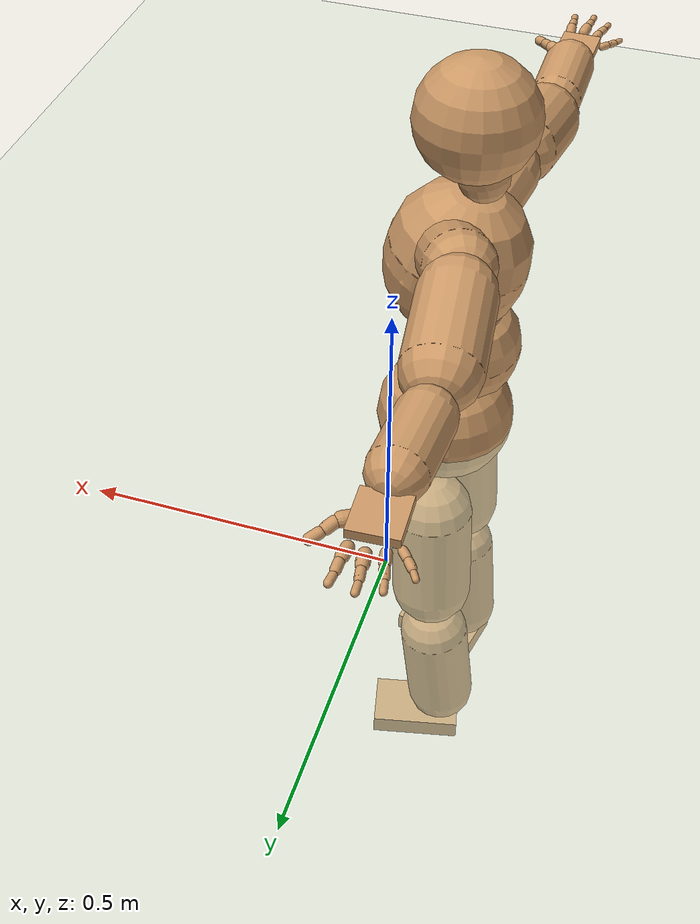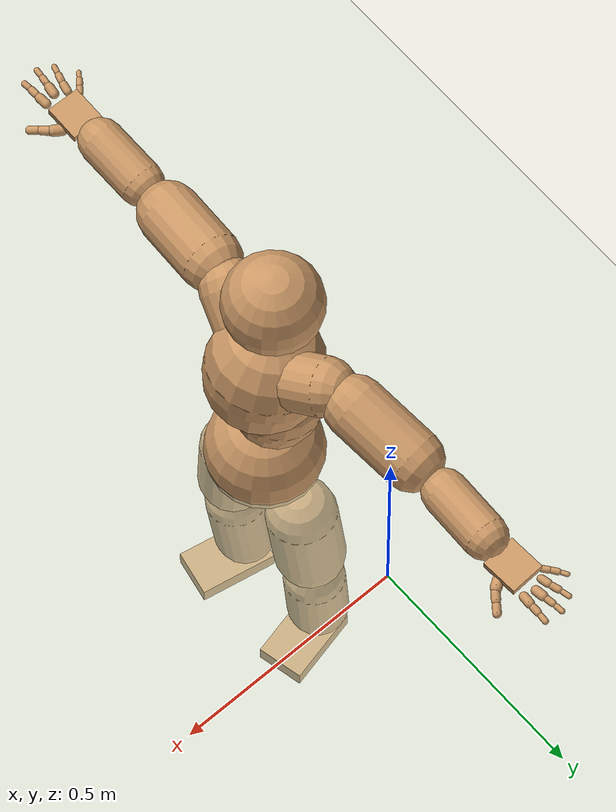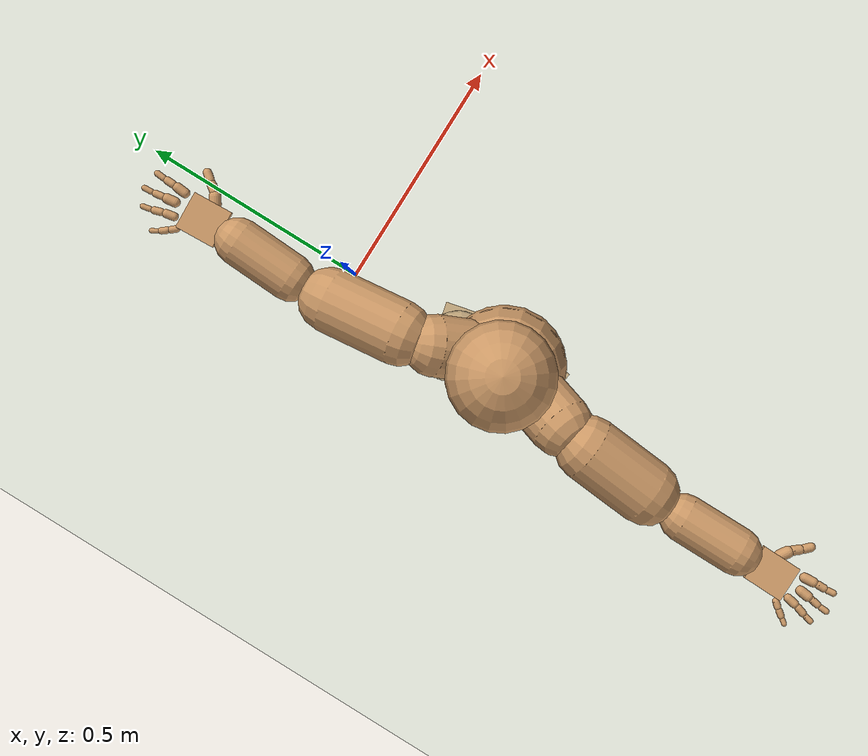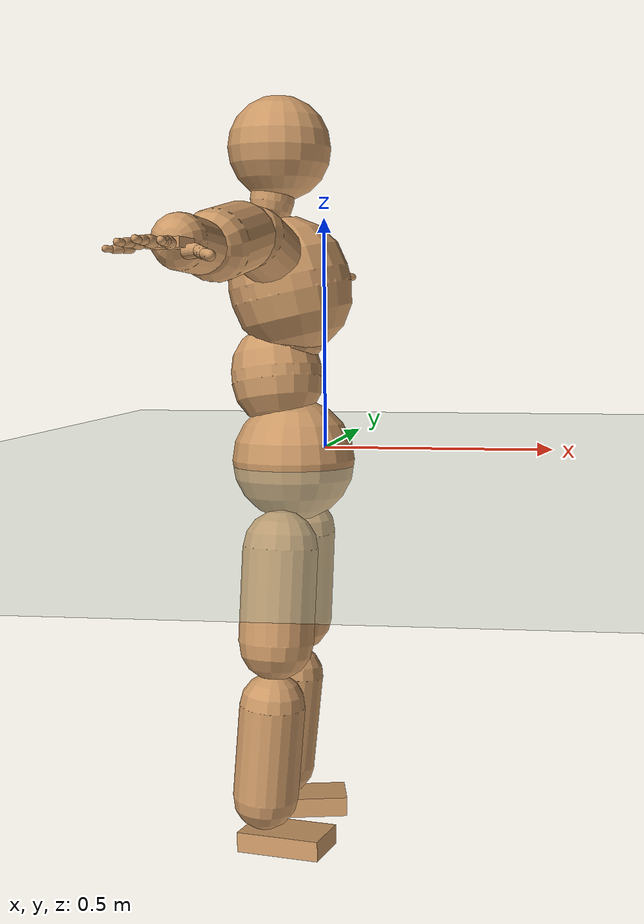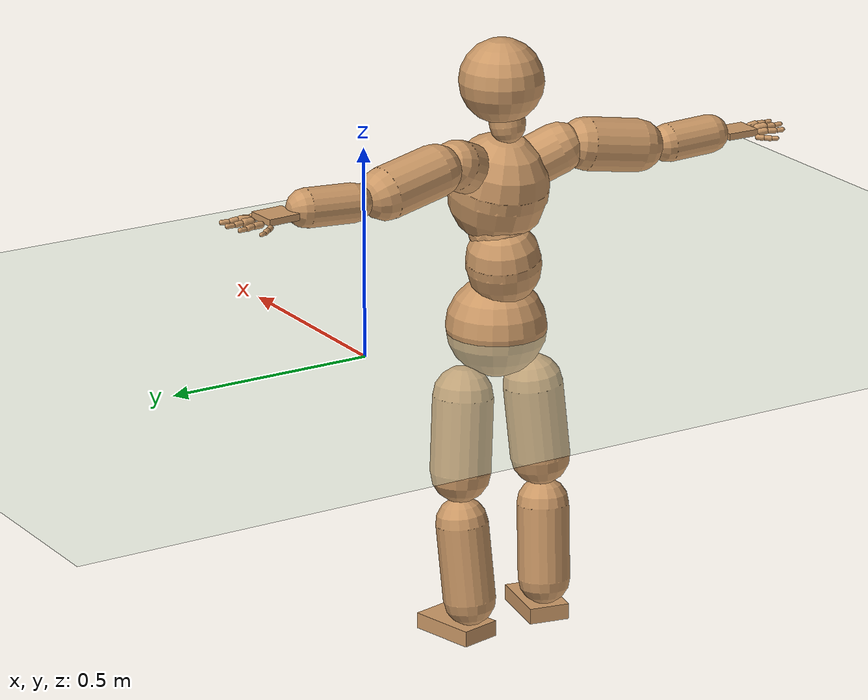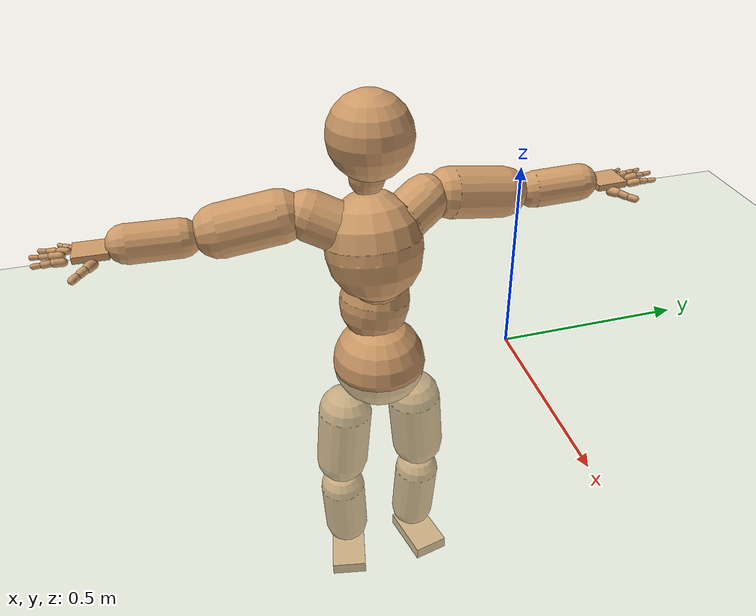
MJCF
<mujoco model="humanoid">
  <compiler coordinate="local" angle="radian"/>
  <default>
    <joint damping="0.0" armature="0.01" stiffness="0.0" limited="true"/>
    <geom conaffinity="1" condim="3" contype="7" margin="0.001" rgba="0.8 0.6 .4 1"/>
  </default>
  <asset>
    <texture type="skybox" builtin="gradient" rgb1=".4 .5 .6" rgb2="0 0 0" width="100" height="100"/>
    <texture builtin="flat" height="1278" mark="cross" markrgb="1 1 1" name="texgeom" random="0.01" rgb1="0.8 0.6 0.4" rgb2="0.8 0.6 0.4" type="cube" width="127"/>
    <texture builtin="checker" height="100" name="texplane" rgb1="0 0 0" rgb2="0.8 0.8 0.8" type="2d" width="100"/>
    <material name="MatPlane" reflectance="0.5" shininess="1" specular="1" texrepeat="60 60" texture="texplane"/>
    <material name="geom" texture="texgeom" texuniform="true"/>
  </asset>
  <worldbody>
    <light cutoff="100" diffuse="1 1 1" dir="-0 0 -1.3" directional="true" exponent="1" pos="0 0 1.3" specular=".1 .1 .1"/>
    <geom conaffinity="1" condim="3" name="floor" pos="0 0 0" rgba="0.8 0.9 0.8 1" size="100 100 .2" type="plane" material="MatPlane"/>
    <body name="Pelvis" pos="0.0011 -0.3568 0.0102">
      <freejoint name="Pelvis"/>
      <geom type="sphere" contype="1" conaffinity="1" density="500" size="0.1203" pos="0.0000 0.0000 0.0000" name="Pelvis"/>
      <body name="L_Hip" pos="-0.0052 0.0921 -0.093">
        <joint name="L_Hip_x" type="hinge" pos="0 0 0" axis="1 0 0" stiffness="800" damping="80" armature="0.02" range="-180.0000 180.0000"/>
        <joint name="L_Hip_y" type="hinge" pos="0 0 0" axis="0 1 0" stiffness="800" damping="80" armature="0.02" range="-180.0000 180.0000"/>
        <joint name="L_Hip_z" type="hinge" pos="0 0 0" axis="0 0 1" stiffness="800" damping="80" armature="0.02" range="-180.0000 180.0000"/>
        <geom type="capsule" contype="1" conaffinity="1" density="500" fromto="-0.0035 0.0047 -0.0614 -0.0140 0.0188 -0.2454" size="0.0722" name="L_Hip"/>
        <body name="L_Knee" pos="-0.0175 0.0235 -0.3068">
          <joint name="L_Knee_x" type="hinge" pos="0 0 0" axis="1 0 0" stiffness="800" damping="80" armature="0.02" range="-180.0000 180.0000"/>
          <joint name="L_Knee_y" type="hinge" pos="0 0 0" axis="0 1 0" stiffness="800" damping="80" armature="0.02" range="-180.0000 180.0000"/>
          <joint name="L_Knee_z" type="hinge" pos="0 0 0" axis="0 0 1" stiffness="800" damping="80" armature="0.02" range="-180.0000 180.0000"/>
          <geom type="capsule" contype="1" conaffinity="1" density="500" fromto="-0.0061 -0.0031 -0.0632 -0.0244 -0.0123 -0.2529" size="0.063" name="L_Knee"/>
          <body name="L_Ankle" pos="-0.0305 -0.0154 -0.3161">
            <joint name="L_Ankle_x" type="hinge" pos="0 0 0" axis="1 0 0" stiffness="800" damping="80" armature="0.02" range="-180.0000 180.0000"/>
            <joint name="L_Ankle_y" type="hinge" pos="0 0 0" axis="0 1 0" stiffness="800" damping="80" armature="0.02" range="-180.0000 180.0000"/>
            <joint name="L_Ankle_z" type="hinge" pos="0 0 0" axis="0 0 1" stiffness="800" damping="80" armature="0.02" range="-180.0000 180.0000"/>
            <geom type="box" contype="1" conaffinity="1" density="500" pos="0.0510 0.0115 -0.0167" size="0.0826 0.0496 0.0193" quat="0.9938 0.0000 0.0000 0.1108" name="L_Ankle"/>
            <body name="L_Toe" pos="0.102 0.023 -0.0334">
              <joint name="L_Toe_x" type="hinge" pos="0 0 0" axis="1 0 0" stiffness="500" damping="50" armature="0.02" range="-180.0000 180.0000"/>
              <joint name="L_Toe_y" type="hinge" pos="0 0 0" axis="0 1 0" stiffness="500" damping="50" armature="0.02" range="-180.0000 180.0000"/>
              <joint name="L_Toe_z" type="hinge" pos="0 0 0" axis="0 0 1" stiffness="500" damping="50" armature="0.02" range="-180.0000 180.0000"/>
              <geom type="box" contype="1" conaffinity="1" density="500" pos="0.0000 0.0000 0.0187" size="0.0009 0.0024 0.0011" quat="0.9930 0.0000 0.0000 0.1178" name="L_Toe"/>
            </body>
          </body>
        </body>
      </body>
      <body name="R_Hip" pos="-0.0059 -0.0918 -0.0989">
        <joint name="R_Hip_x" type="hinge" pos="0 0 0" axis="1 0 0" stiffness="800" damping="80" armature="0.02" range="-180.0000 180.0000"/>
        <joint name="R_Hip_y" type="hinge" pos="0 0 0" axis="0 1 0" stiffness="800" damping="80" armature="0.02" range="-180.0000 180.0000"/>
        <joint name="R_Hip_z" type="hinge" pos="0 0 0" axis="0 0 1" stiffness="800" damping="80" armature="0.02" range="-180.0000 180.0000"/>
        <geom type="capsule" contype="1" conaffinity="1" density="500" fromto="-0.0022 -0.0057 -0.0606 -0.0086 -0.0230 -0.2423" size="0.072" name="R_Hip"/>
        <body name="R_Knee" pos="-0.0108 -0.0287 -0.3028">
          <joint name="R_Knee_x" type="hinge" pos="0 0 0" axis="1 0 0" stiffness="800" damping="80" armature="0.02" range="-180.0000 180.0000"/>
          <joint name="R_Knee_y" type="hinge" pos="0 0 0" axis="0 1 0" stiffness="800" damping="80" armature="0.02" range="-180.0000 180.0000"/>
          <joint name="R_Knee_z" type="hinge" pos="0 0 0" axis="0 0 1" stiffness="800" damping="80" armature="0.02" range="-180.0000 180.0000"/>
          <geom type="capsule" contype="1" conaffinity="1" density="500" fromto="-0.0055 0.0021 -0.0615 -0.0221 0.0085 -0.2460" size="0.0631" name="R_Knee"/>
          <body name="R_Ankle" pos="-0.0276 0.0106 -0.3076">
            <joint name="R_Ankle_x" type="hinge" pos="0 0 0" axis="1 0 0" stiffness="800" damping="80" armature="0.02" range="-180.0000 180.0000"/>
            <joint name="R_Ankle_y" type="hinge" pos="0 0 0" axis="0 1 0" stiffness="800" damping="80" armature="0.02" range="-180.0000 180.0000"/>
            <joint name="R_Ankle_z" type="hinge" pos="0 0 0" axis="0 0 1" stiffness="800" damping="80" armature="0.02" range="-180.0000 180.0000"/>
            <geom type="box" contype="1" conaffinity="1" density="500" pos="0.0480 -0.0095 -0.0182" size="0.0826 0.0496 0.0193" quat="0.9952 0.0000 0.0000 -0.0975" name="R_Ankle"/>
            <body name="R_Toe" pos="0.0961 -0.019 -0.0364">
              <joint name="R_Toe_x" type="hinge" pos="0 0 0" axis="1 0 0" stiffness="500" damping="50" armature="0.02" range="-180.0000 180.0000"/>
              <joint name="R_Toe_y" type="hinge" pos="0 0 0" axis="0 1 0" stiffness="500" damping="50" armature="0.02" range="-180.0000 180.0000"/>
              <joint name="R_Toe_z" type="hinge" pos="0 0 0" axis="0 0 1" stiffness="500" damping="50" armature="0.02" range="-180.0000 180.0000"/>
              <geom type="box" contype="1" conaffinity="1" density="500" pos="0.0000 0.0000 0.0201" size="0.0009 0.0024 0.0011" quat="0.9963 0.0000 0.0000 -0.0857" name="R_Toe"/>
            </body>
          </body>
        </body>
      </body>
      <body name="Torso" pos="-0.0263 -0.0069 0.1092">
        <joint name="Torso_x" type="hinge" pos="0 0 0" axis="1 0 0" stiffness="1000" damping="100" armature="0.02" range="-180.0000 180.0000"/>
        <joint name="Torso_y" type="hinge" pos="0 0 0" axis="0 1 0" stiffness="1000" damping="100" armature="0.02" range="-180.0000 180.0000"/>
        <joint name="Torso_z" type="hinge" pos="0 0 0" axis="0 0 1" stiffness="1000" damping="100" armature="0.02" range="-180.0000 180.0000"/>
        <geom type="capsule" contype="1" conaffinity="1" density="500" fromto="-0.0079 0.0096 0.0667 -0.0053 0.0064 0.0444" size="0.0887" name="Torso"/>
        <body name="Spine" pos="-0.0132 0.016 0.1111">
          <joint name="Spine_x" type="hinge" pos="0 0 0" axis="1 0 0" stiffness="1000" damping="100" armature="0.02" range="-180.0000 180.0000"/>
          <joint name="Spine_y" type="hinge" pos="0 0 0" axis="0 1 0" stiffness="1000" damping="100" armature="0.02" range="-180.0000 180.0000"/>
          <joint name="Spine_z" type="hinge" pos="0 0 0" axis="0 0 1" stiffness="1000" damping="100" armature="0.02" range="-180.0000 180.0000"/>
          <geom type="capsule" contype="1" conaffinity="1" density="500" fromto="0.0314 -0.0058 0.0263 0.0209 -0.0038 0.0175" size="0.0708" name="Spine"/>
          <body name="Chest" pos="0.0523 -0.0096 0.0439">
            <joint name="Chest_x" type="hinge" pos="0 0 0" axis="1 0 0" stiffness="1000" damping="100" armature="0.02" range="-180.0000 180.0000"/>
            <joint name="Chest_y" type="hinge" pos="0 0 0" axis="0 1 0" stiffness="1000" damping="100" armature="0.02" range="-180.0000 180.0000"/>
            <joint name="Chest_z" type="hinge" pos="0 0 0" axis="0 0 1" stiffness="1000" damping="100" armature="0.02" range="-180.0000 180.0000"/>
            <geom type="capsule" contype="1" conaffinity="1" density="500" fromto="-0.0204 -0.0022 0.0896 -0.0136 -0.0014 0.0597" size="0.1181" name="Chest"/>
            <body name="Neck" pos="-0.0547 -0.0072 0.2061">
              <joint name="Neck_x" type="hinge" pos="0 0 0" axis="1 0 0" stiffness="500" damping="50" armature="0.02" range="-180.0000 180.0000"/>
              <joint name="Neck_y" type="hinge" pos="0 0 0" axis="0 1 0" stiffness="500" damping="50" armature="0.02" range="-180.0000 180.0000"/>
              <joint name="Neck_z" type="hinge" pos="0 0 0" axis="0 0 1" stiffness="500" damping="50" armature="0.02" range="-180.0000 180.0000"/>
              <geom type="capsule" contype="1" conaffinity="1" density="500" fromto="0.0037 0.0019 0.0260 0.0148 0.0077 0.1040" size="0.0424" name="Neck"/>
              <body name="Head" pos="0.0184 0.0096 0.1299">
                <joint name="Head_x" type="hinge" pos="0 0 0" axis="1 0 0" stiffness="500" damping="50" armature="0.02" range="-180.0000 180.0000"/>
                <joint name="Head_y" type="hinge" pos="0 0 0" axis="0 1 0" stiffness="500" damping="50" armature="0.02" range="-180.0000 180.0000"/>
                <joint name="Head_z" type="hinge" pos="0 0 0" axis="0 0 1" stiffness="500" damping="50" armature="0.02" range="-180.0000 180.0000"/>
                <geom type="sphere" contype="1" conaffinity="1" density="500" size="0.0998" pos="0.0000 0.0000 0.0000" name="Head"/>
              </body>
            </body>
            <body name="L_Thorax" pos="-0.0196 0.0587 0.1231">
              <joint name="L_Thorax_x" type="hinge" pos="0 0 0" axis="1 0 0" stiffness="500" damping="50" armature="0.02" range="-180.0000 180.0000"/>
              <joint name="L_Thorax_y" type="hinge" pos="0 0 0" axis="0 1 0" stiffness="500" damping="50" armature="0.02" range="-180.0000 180.0000"/>
              <joint name="L_Thorax_z" type="hinge" pos="0 0 0" axis="0 0 1" stiffness="500" damping="50" armature="0.02" range="-180.0000 180.0000"/>
              <geom type="capsule" contype="1" conaffinity="1" density="500" fromto="-0.0083 0.0187 0.0089 -0.0334 0.0746 0.0357" size="0.0592" name="L_Thorax"/>
              <body name="L_Shoulder" pos="-0.0417 0.0933 0.0446">
                <joint name="L_Shoulder_x" type="hinge" pos="0 0 0" axis="1 0 0" stiffness="500" damping="50" armature="0.02" range="-180.0000 180.0000"/>
                <joint name="L_Shoulder_y" type="hinge" pos="0 0 0" axis="0 1 0" stiffness="500" damping="50" armature="0.02" range="-180.0000 180.0000"/>
                <joint name="L_Shoulder_z" type="hinge" pos="0 0 0" axis="0 0 1" stiffness="500" damping="50" armature="0.02" range="-180.0000 180.0000"/>
                <geom type="capsule" contype="1" conaffinity="1" density="500" fromto="-0.0053 0.0475 -0.0084 -0.0214 0.1899 -0.0338" size="0.0625" name="L_Shoulder"/>
                <body name="L_Elbow" pos="-0.0267 0.2374 -0.0422">
                  <joint name="L_Elbow_x" type="hinge" pos="0 0 0" axis="1 0 0" stiffness="500" damping="50" armature="0.02" range="-720.0000 720.0000"/>
                  <joint name="L_Elbow_y" type="hinge" pos="0 0 0" axis="0 1 0" stiffness="500" damping="50" armature="0.02" range="-720.0000 720.0000"/>
                  <joint name="L_Elbow_z" type="hinge" pos="0 0 0" axis="0 0 1" stiffness="500" damping="50" armature="0.02" range="-720.0000 720.0000"/>
                  <geom type="capsule" contype="1" conaffinity="1" density="500" fromto="0.0019 0.0394 0.0019 0.0076 0.1577 0.0078" size="0.0457" name="L_Elbow"/>
                  <body name="L_Wrist" pos="0.0095 0.1971 0.0097">
                    <joint name="L_Wrist_x" type="hinge" pos="0 0 0" axis="1 0 0" stiffness="300" damping="30" armature="0.02" range="-180.0000 180.0000"/>
                    <joint name="L_Wrist_y" type="hinge" pos="0 0 0" axis="0 1 0" stiffness="300" damping="30" armature="0.02" range="-180.0000 180.0000"/>
                    <joint name="L_Wrist_z" type="hinge" pos="0 0 0" axis="0 0 1" stiffness="300" damping="30" armature="0.02" range="-180.0000 180.0000"/>
                    <geom type="box" contype="1" conaffinity="1" density="500" pos="-0.0019 0.0374 -0.0076" size="0.0396 0.0371 0.0078" quat="0.7244 0.0000 0.0000 -0.6894" name="L_Wrist"/>
                    <body name="L_Index1" pos="0.0216 0.0893 -0.0127">
                      <joint name="L_Index1_x" type="hinge" pos="0 0 0" axis="1 0 0" stiffness="100" damping="10" armature="0.02" range="-180.0000 180.0000"/>
                      <joint name="L_Index1_y" type="hinge" pos="0 0 0" axis="0 1 0" stiffness="100" damping="10" armature="0.02" range="-180.0000 180.0000"/>
                      <joint name="L_Index1_z" type="hinge" pos="0 0 0" axis="0 0 1" stiffness="100" damping="10" armature="0.02" range="-180.0000 180.0000"/>
                      <geom type="capsule" contype="1" conaffinity="1" density="500" fromto="0.0006 0.0060 0.0006 0.0022 0.0239 0.0024" size="0.0094" name="L_Index1"/>
                      <body name="L_Index2" pos="0.0028 0.0299 0.003">
                        <joint name="L_Index2_x" type="hinge" pos="0 0 0" axis="1 0 0" stiffness="100" damping="10" armature="0.02" range="-180.0000 180.0000"/>
                        <joint name="L_Index2_y" type="hinge" pos="0 0 0" axis="0 1 0" stiffness="100" damping="10" armature="0.02" range="-180.0000 180.0000"/>
                        <joint name="L_Index2_z" type="hinge" pos="0 0 0" axis="0 0 1" stiffness="100" damping="10" armature="0.02" range="-180.0000 180.0000"/>
                        <geom type="capsule" contype="1" conaffinity="1" density="500" fromto="0.0000 0.0042 -0.0002 0.0001 0.0169 -0.0010" size="0.0076" name="L_Index2"/>
                        <body name="L_Index3" pos="0.0001 0.0211 -0.0012">
                          <joint name="L_Index3_x" type="hinge" pos="0 0 0" axis="1 0 0" stiffness="100" damping="10" armature="0.02" range="-180.0000 180.0000"/>
                          <joint name="L_Index3_y" type="hinge" pos="0 0 0" axis="0 1 0" stiffness="100" damping="10" armature="0.02" range="-180.0000 180.0000"/>
                          <joint name="L_Index3_z" type="hinge" pos="0 0 0" axis="0 0 1" stiffness="100" damping="10" armature="0.02" range="-180.0000 180.0000"/>
                          <geom type="capsule" contype="1" conaffinity="1" density="500" fromto="0.0004 0.0046 0.0002 0.0017 0.0185 0.0006" size="0.0061" name="L_Index3"/>
                        </body>
                      </body>
                    </body>
                    <body name="L_Middle1" pos="-0.0015 0.0957 -0.0102">
                      <joint name="L_Middle1_x" type="hinge" pos="0 0 0" axis="1 0 0" stiffness="100" damping="10" armature="0.02" range="-180.0000 180.0000"/>
                      <joint name="L_Middle1_y" type="hinge" pos="0 0 0" axis="0 1 0" stiffness="100" damping="10" armature="0.02" range="-180.0000 180.0000"/>
                      <joint name="L_Middle1_z" type="hinge" pos="0 0 0" axis="0 0 1" stiffness="100" damping="10" armature="0.02" range="-180.0000 180.0000"/>
                      <geom type="capsule" contype="1" conaffinity="1" density="500" fromto="-0.0007 0.0057 0.0003 -0.0028 0.0227 0.0013" size="0.0097" name="L_Middle1"/>
                      <body name="L_Middle2" pos="-0.0035 0.0283 0.0017">
                        <joint name="L_Middle2_x" type="hinge" pos="0 0 0" axis="1 0 0" stiffness="100" damping="10" armature="0.02" range="-180.0000 180.0000"/>
                        <joint name="L_Middle2_y" type="hinge" pos="0 0 0" axis="0 1 0" stiffness="100" damping="10" armature="0.02" range="-180.0000 180.0000"/>
                        <joint name="L_Middle2_z" type="hinge" pos="0 0 0" axis="0 0 1" stiffness="100" damping="10" armature="0.02" range="-180.0000 180.0000"/>
                        <geom type="capsule" contype="1" conaffinity="1" density="500" fromto="-0.0007 0.0043 -0.0001 -0.0028 0.0174 -0.0006" size="0.007" name="L_Middle2"/>
                        <body name="L_Middle3" pos="-0.0036 0.0217 -0.0007">
                          <joint name="L_Middle3_x" type="hinge" pos="0 0 0" axis="1 0 0" stiffness="100" damping="10" armature="0.02" range="-180.0000 180.0000"/>
                          <joint name="L_Middle3_y" type="hinge" pos="0 0 0" axis="0 1 0" stiffness="100" damping="10" armature="0.02" range="-180.0000 180.0000"/>
                          <joint name="L_Middle3_z" type="hinge" pos="0 0 0" axis="0 0 1" stiffness="100" damping="10" armature="0.02" range="-180.0000 180.0000"/>
                          <geom type="capsule" contype="1" conaffinity="1" density="500" fromto="-0.0003 0.0047 0.0003 -0.0012 0.0190 0.0010" size="0.0056" name="L_Middle3"/>
                        </body>
                      </body>
                    </body>
                    <body name="L_Pinky1" pos="-0.0411 0.0715 -0.0183">
                      <joint name="L_Pinky1_x" type="hinge" pos="0 0 0" axis="1 0 0" stiffness="100" damping="10" armature="0.02" range="-180.0000 180.0000"/>
                      <joint name="L_Pinky1_y" type="hinge" pos="0 0 0" axis="0 1 0" stiffness="100" damping="10" armature="0.02" range="-180.0000 180.0000"/>
                      <joint name="L_Pinky1_z" type="hinge" pos="0 0 0" axis="0 0 1" stiffness="100" damping="10" armature="0.02" range="-180.0000 180.0000"/>
                      <geom type="capsule" contype="1" conaffinity="1" density="500" fromto="-0.0023 0.0028 -0.0001 -0.0094 0.0112 -0.0006" size="0.0068" name="L_Pinky1"/>
                      <body name="L_Pinky2" pos="-0.0117 0.014 -0.0007">
                        <joint name="L_Pinky2_x" type="hinge" pos="0 0 0" axis="1 0 0" stiffness="100" damping="10" armature="0.02" range="-180.0000 180.0000"/>
                        <joint name="L_Pinky2_y" type="hinge" pos="0 0 0" axis="0 1 0" stiffness="100" damping="10" armature="0.02" range="-180.0000 180.0000"/>
                        <joint name="L_Pinky2_z" type="hinge" pos="0 0 0" axis="0 0 1" stiffness="100" damping="10" armature="0.02" range="-180.0000 180.0000"/>
                        <geom type="capsule" contype="1" conaffinity="1" density="500" fromto="-0.0022 0.0029 -0.0002 -0.0089 0.0115 -0.0010" size="0.0066" name="L_Pinky2"/>
                        <body name="L_Pinky3" pos="-0.0111 0.0144 -0.0012">
                          <joint name="L_Pinky3_x" type="hinge" pos="0 0 0" axis="1 0 0" stiffness="100" damping="10" armature="0.02" range="-180.0000 180.0000"/>
                          <joint name="L_Pinky3_y" type="hinge" pos="0 0 0" axis="0 1 0" stiffness="100" damping="10" armature="0.02" range="-180.0000 180.0000"/>
                          <joint name="L_Pinky3_z" type="hinge" pos="0 0 0" axis="0 0 1" stiffness="100" damping="10" armature="0.02" range="-180.0000 180.0000"/>
                          <geom type="capsule" contype="1" conaffinity="1" density="500" fromto="-0.0018 0.0033 0.0002 -0.0073 0.0131 0.0006" size="0.0048" name="L_Pinky3"/>
                        </body>
                      </body>
                    </body>
                    <body name="L_Ring1" pos="-0.0251 0.0842 -0.013">
                      <joint name="L_Ring1_x" type="hinge" pos="0 0 0" axis="1 0 0" stiffness="100" damping="10" armature="0.02" range="-180.0000 180.0000"/>
                      <joint name="L_Ring1_y" type="hinge" pos="0 0 0" axis="0 1 0" stiffness="100" damping="10" armature="0.02" range="-180.0000 180.0000"/>
                      <joint name="L_Ring1_z" type="hinge" pos="0 0 0" axis="0 0 1" stiffness="100" damping="10" armature="0.02" range="-180.0000 180.0000"/>
                      <geom type="capsule" contype="1" conaffinity="1" density="500" fromto="-0.0010 0.0052 0.0003 -0.0041 0.0209 0.0014" size="0.0083" name="L_Ring1"/>
                      <body name="L_Ring2" pos="-0.0051 0.0261 0.0017">
                        <joint name="L_Ring2_x" type="hinge" pos="0 0 0" axis="1 0 0" stiffness="100" damping="10" armature="0.02" range="-180.0000 180.0000"/>
                        <joint name="L_Ring2_y" type="hinge" pos="0 0 0" axis="0 1 0" stiffness="100" damping="10" armature="0.02" range="-180.0000 180.0000"/>
                        <joint name="L_Ring2_z" type="hinge" pos="0 0 0" axis="0 0 1" stiffness="100" damping="10" armature="0.02" range="-180.0000 180.0000"/>
                        <geom type="capsule" contype="1" conaffinity="1" density="500" fromto="-0.0014 0.0042 -0.0002 -0.0055 0.0169 -0.0009" size="0.0073" name="L_Ring2"/>
                        <body name="L_Ring3" pos="-0.0068 0.0211 -0.0011">
                          <joint name="L_Ring3_x" type="hinge" pos="0 0 0" axis="1 0 0" stiffness="100" damping="10" armature="0.02" range="-180.0000 180.0000"/>
                          <joint name="L_Ring3_y" type="hinge" pos="0 0 0" axis="0 1 0" stiffness="100" damping="10" armature="0.02" range="-180.0000 180.0000"/>
                          <joint name="L_Ring3_z" type="hinge" pos="0 0 0" axis="0 0 1" stiffness="100" damping="10" armature="0.02" range="-180.0000 180.0000"/>
                          <geom type="capsule" contype="1" conaffinity="1" density="500" fromto="-0.0010 0.0046 0.0002 -0.0039 0.0185 0.0007" size="0.0054" name="L_Ring3"/>
                        </body>
                      </body>
                    </body>
                    <body name="L_Thumb1" pos="0.0277 0.0337 -0.0216">
                      <joint name="L_Thumb1_x" type="hinge" pos="0 0 0" axis="1 0 0" stiffness="100" damping="10" armature="0.02" range="-180.0000 180.0000"/>
                      <joint name="L_Thumb1_y" type="hinge" pos="0 0 0" axis="0 1 0" stiffness="100" damping="10" armature="0.02" range="-180.0000 180.0000"/>
                      <joint name="L_Thumb1_z" type="hinge" pos="0 0 0" axis="0 0 1" stiffness="100" damping="10" armature="0.02" range="-180.0000 180.0000"/>
                      <geom type="capsule" contype="1" conaffinity="1" density="500" fromto="0.0047 0.0030 0.0003 0.0187 0.0120 0.0014" size="0.0117" name="L_Thumb1"/>
                      <body name="L_Thumb2" pos="0.0234 0.0149 0.0017">
                        <joint name="L_Thumb2_x" type="hinge" pos="0 0 0" axis="1 0 0" stiffness="100" damping="10" armature="0.02" range="-180.0000 180.0000"/>
                        <joint name="L_Thumb2_y" type="hinge" pos="0 0 0" axis="0 1 0" stiffness="100" damping="10" armature="0.02" range="-180.0000 180.0000"/>
                        <joint name="L_Thumb2_z" type="hinge" pos="0 0 0" axis="0 0 1" stiffness="100" damping="10" armature="0.02" range="-180.0000 180.0000"/>
                        <geom type="capsule" contype="1" conaffinity="1" density="500" fromto="0.0027 0.0037 -0.0012 0.0109 0.0146 -0.0047" size="0.0093" name="L_Thumb2"/>
                        <body name="L_Thumb3" pos="0.0136 0.0183 -0.0058">
                          <joint name="L_Thumb3_x" type="hinge" pos="0 0 0" axis="1 0 0" stiffness="100" damping="10" armature="0.02" range="-180.0000 180.0000"/>
                          <joint name="L_Thumb3_y" type="hinge" pos="0 0 0" axis="0 1 0" stiffness="100" damping="10" armature="0.02" range="-180.0000 180.0000"/>
                          <joint name="L_Thumb3_z" type="hinge" pos="0 0 0" axis="0 0 1" stiffness="100" damping="10" armature="0.02" range="-180.0000 180.0000"/>
                          <geom type="capsule" contype="1" conaffinity="1" density="500" fromto="0.0031 0.0041 -0.0008 0.0125 0.0162 -0.0031" size="0.0086" name="L_Thumb3"/>
                        </body>
                      </body>
                    </body>
                  </body>
                </body>
              </body>
            </body>
            <body name="R_Thorax" pos="-0.0278 -0.0623 0.1187">
              <joint name="R_Thorax_x" type="hinge" pos="0 0 0" axis="1 0 0" stiffness="500" damping="50" armature="0.02" range="-180.0000 180.0000"/>
              <joint name="R_Thorax_y" type="hinge" pos="0 0 0" axis="0 1 0" stiffness="500" damping="50" armature="0.02" range="-180.0000 180.0000"/>
              <joint name="R_Thorax_z" type="hinge" pos="0 0 0" axis="0 0 1" stiffness="500" damping="50" armature="0.02" range="-180.0000 180.0000"/>
              <geom type="capsule" contype="1" conaffinity="1" density="500" fromto="-0.0064 -0.0203 0.0095 -0.0258 -0.0813 0.0378" size="0.0606" name="R_Thorax"/>
              <body name="R_Shoulder" pos="-0.0322 -0.1016 0.0473">
                <joint name="R_Shoulder_x" type="hinge" pos="0 0 0" axis="1 0 0" stiffness="500" damping="50" armature="0.02" range="-180.0000 180.0000"/>
                <joint name="R_Shoulder_y" type="hinge" pos="0 0 0" axis="0 1 0" stiffness="500" damping="50" armature="0.02" range="-180.0000 180.0000"/>
                <joint name="R_Shoulder_z" type="hinge" pos="0 0 0" axis="0 0 1" stiffness="500" damping="50" armature="0.02" range="-180.0000 180.0000"/>
                <geom type="capsule" contype="1" conaffinity="1" density="500" fromto="-0.0041 -0.0456 -0.0075 -0.0162 -0.1823 -0.0300" size="0.0631" name="R_Shoulder"/>
                <body name="R_Elbow" pos="-0.0203 -0.2279 -0.0375">
                  <joint name="R_Elbow_x" type="hinge" pos="0 0 0" axis="1 0 0" stiffness="500" damping="50" armature="0.02" range="-720.0000 720.0000"/>
                  <joint name="R_Elbow_y" type="hinge" pos="0 0 0" axis="0 1 0" stiffness="500" damping="50" armature="0.02" range="-720.0000 720.0000"/>
                  <joint name="R_Elbow_z" type="hinge" pos="0 0 0" axis="0 0 1" stiffness="500" damping="50" armature="0.02" range="-720.0000 720.0000"/>
                  <geom type="capsule" contype="1" conaffinity="1" density="500" fromto="-0.0000 -0.0394 0.0011 -0.0001 -0.1574 0.0045" size="0.0458" name="R_Elbow"/>
                  <body name="R_Wrist" pos="-0.0002 -0.1968 0.0056">
                    <joint name="R_Wrist_x" type="hinge" pos="0 0 0" axis="1 0 0" stiffness="300" damping="30" armature="0.02" range="-180.0000 180.0000"/>
                    <joint name="R_Wrist_y" type="hinge" pos="0 0 0" axis="0 1 0" stiffness="300" damping="30" armature="0.02" range="-180.0000 180.0000"/>
                    <joint name="R_Wrist_z" type="hinge" pos="0 0 0" axis="0 0 1" stiffness="300" damping="30" armature="0.02" range="-180.0000 180.0000"/>
                    <geom type="box" contype="1" conaffinity="1" density="500" pos="-0.0009 -0.0370 -0.0070" size="0.0396 0.0348 0.008" quat="0.7158 0.0000 0.0000 0.6984" name="R_Wrist"/>
                    <body name="R_Index1" pos="0.0235 -0.0884 -0.0115">
                      <joint name="R_Index1_x" type="hinge" pos="0 0 0" axis="1 0 0" stiffness="100" damping="10" armature="0.02" range="-180.0000 180.0000"/>
                      <joint name="R_Index1_y" type="hinge" pos="0 0 0" axis="0 1 0" stiffness="100" damping="10" armature="0.02" range="-180.0000 180.0000"/>
                      <joint name="R_Index1_z" type="hinge" pos="0 0 0" axis="0 0 1" stiffness="100" damping="10" armature="0.02" range="-180.0000 180.0000"/>
                      <geom type="capsule" contype="1" conaffinity="1" density="500" fromto="0.0006 -0.0060 0.0006 0.0022 -0.0239 0.0024" size="0.0094" name="R_Index1"/>
                      <body name="R_Index2" pos="0.0028 -0.0299 0.003">
                        <joint name="R_Index2_x" type="hinge" pos="0 0 0" axis="1 0 0" stiffness="100" damping="10" armature="0.02" range="-180.0000 180.0000"/>
                        <joint name="R_Index2_y" type="hinge" pos="0 0 0" axis="0 1 0" stiffness="100" damping="10" armature="0.02" range="-180.0000 180.0000"/>
                        <joint name="R_Index2_z" type="hinge" pos="0 0 0" axis="0 0 1" stiffness="100" damping="10" armature="0.02" range="-180.0000 180.0000"/>
                        <geom type="capsule" contype="1" conaffinity="1" density="500" fromto="0.0000 -0.0042 -0.0002 0.0001 -0.0169 -0.0010" size="0.0076" name="R_Index2"/>
                        <body name="R_Index3" pos="0.0001 -0.0211 -0.0012">
                          <joint name="R_Index3_x" type="hinge" pos="0 0 0" axis="1 0 0" stiffness="100" damping="10" armature="0.02" range="-180.0000 180.0000"/>
                          <joint name="R_Index3_y" type="hinge" pos="0 0 0" axis="0 1 0" stiffness="100" damping="10" armature="0.02" range="-180.0000 180.0000"/>
                          <joint name="R_Index3_z" type="hinge" pos="0 0 0" axis="0 0 1" stiffness="100" damping="10" armature="0.02" range="-180.0000 180.0000"/>
                          <geom type="capsule" contype="1" conaffinity="1" density="500" fromto="0.0004 -0.0038 0.0002 0.0017 -0.0153 0.0006" size="0.0064" name="R_Index3"/>
                        </body>
                      </body>
                    </body>
                    <body name="R_Middle1" pos="0.0004 -0.0948 -0.009">
                      <joint name="R_Middle1_x" type="hinge" pos="0 0 0" axis="1 0 0" stiffness="100" damping="10" armature="0.02" range="-180.0000 180.0000"/>
                      <joint name="R_Middle1_y" type="hinge" pos="0 0 0" axis="0 1 0" stiffness="100" damping="10" armature="0.02" range="-180.0000 180.0000"/>
                      <joint name="R_Middle1_z" type="hinge" pos="0 0 0" axis="0 0 1" stiffness="100" damping="10" armature="0.02" range="-180.0000 180.0000"/>
                      <geom type="capsule" contype="1" conaffinity="1" density="500" fromto="-0.0007 -0.0057 0.0003 -0.0028 -0.0227 0.0013" size="0.0097" name="R_Middle1"/>
                      <body name="R_Middle2" pos="-0.0035 -0.0283 0.0017">
                        <joint name="R_Middle2_x" type="hinge" pos="0 0 0" axis="1 0 0" stiffness="100" damping="10" armature="0.02" range="-180.0000 180.0000"/>
                        <joint name="R_Middle2_y" type="hinge" pos="0 0 0" axis="0 1 0" stiffness="100" damping="10" armature="0.02" range="-180.0000 180.0000"/>
                        <joint name="R_Middle2_z" type="hinge" pos="0 0 0" axis="0 0 1" stiffness="100" damping="10" armature="0.02" range="-180.0000 180.0000"/>
                        <geom type="capsule" contype="1" conaffinity="1" density="500" fromto="-0.0007 -0.0043 -0.0001 -0.0028 -0.0174 -0.0006" size="0.007" name="R_Middle2"/>
                        <body name="R_Middle3" pos="-0.0036 -0.0217 -0.0007">
                          <joint name="R_Middle3_x" type="hinge" pos="0 0 0" axis="1 0 0" stiffness="100" damping="10" armature="0.02" range="-180.0000 180.0000"/>
                          <joint name="R_Middle3_y" type="hinge" pos="0 0 0" axis="0 1 0" stiffness="100" damping="10" armature="0.02" range="-180.0000 180.0000"/>
                          <joint name="R_Middle3_z" type="hinge" pos="0 0 0" axis="0 0 1" stiffness="100" damping="10" armature="0.02" range="-180.0000 180.0000"/>
                          <geom type="capsule" contype="1" conaffinity="1" density="500" fromto="-0.0003 -0.0039 0.0003 -0.0012 -0.0158 0.0010" size="0.0059" name="R_Middle3"/>
                        </body>
                      </body>
                    </body>
                    <body name="R_Pinky1" pos="-0.0392 -0.0706 -0.0172">
                      <joint name="R_Pinky1_x" type="hinge" pos="0 0 0" axis="1 0 0" stiffness="100" damping="10" armature="0.02" range="-180.0000 180.0000"/>
                      <joint name="R_Pinky1_y" type="hinge" pos="0 0 0" axis="0 1 0" stiffness="100" damping="10" armature="0.02" range="-180.0000 180.0000"/>
                      <joint name="R_Pinky1_z" type="hinge" pos="0 0 0" axis="0 0 1" stiffness="100" damping="10" armature="0.02" range="-180.0000 180.0000"/>
                      <geom type="capsule" contype="1" conaffinity="1" density="500" fromto="-0.0023 -0.0028 -0.0001 -0.0094 -0.0112 -0.0006" size="0.0068" name="R_Pinky1"/>
                      <body name="R_Pinky2" pos="-0.0117 -0.014 -0.0007">
                        <joint name="R_Pinky2_x" type="hinge" pos="0 0 0" axis="1 0 0" stiffness="100" damping="10" armature="0.02" range="-180.0000 180.0000"/>
                        <joint name="R_Pinky2_y" type="hinge" pos="0 0 0" axis="0 1 0" stiffness="100" damping="10" armature="0.02" range="-180.0000 180.0000"/>
                        <joint name="R_Pinky2_z" type="hinge" pos="0 0 0" axis="0 0 1" stiffness="100" damping="10" armature="0.02" range="-180.0000 180.0000"/>
                        <geom type="capsule" contype="1" conaffinity="1" density="500" fromto="-0.0022 -0.0029 -0.0002 -0.0089 -0.0115 -0.0010" size="0.0066" name="R_Pinky2"/>
                        <body name="R_Pinky3" pos="-0.0111 -0.0144 -0.0012">
                          <joint name="R_Pinky3_x" type="hinge" pos="0 0 0" axis="1 0 0" stiffness="100" damping="10" armature="0.02" range="-180.0000 180.0000"/>
                          <joint name="R_Pinky3_y" type="hinge" pos="0 0 0" axis="0 1 0" stiffness="100" damping="10" armature="0.02" range="-180.0000 180.0000"/>
                          <joint name="R_Pinky3_z" type="hinge" pos="0 0 0" axis="0 0 1" stiffness="100" damping="10" armature="0.02" range="-180.0000 180.0000"/>
                          <geom type="capsule" contype="1" conaffinity="1" density="500" fromto="-0.0018 -0.0025 0.0002 -0.0073 -0.0099 0.0006" size="0.005" name="R_Pinky3"/>
                        </body>
                      </body>
                    </body>
                    <body name="R_Ring1" pos="-0.0232 -0.0833 -0.0118">
                      <joint name="R_Ring1_x" type="hinge" pos="0 0 0" axis="1 0 0" stiffness="100" damping="10" armature="0.02" range="-180.0000 180.0000"/>
                      <joint name="R_Ring1_y" type="hinge" pos="0 0 0" axis="0 1 0" stiffness="100" damping="10" armature="0.02" range="-180.0000 180.0000"/>
                      <joint name="R_Ring1_z" type="hinge" pos="0 0 0" axis="0 0 1" stiffness="100" damping="10" armature="0.02" range="-180.0000 180.0000"/>
                      <geom type="capsule" contype="1" conaffinity="1" density="500" fromto="-0.0010 -0.0052 0.0003 -0.0041 -0.0209 0.0014" size="0.0083" name="R_Ring1"/>
                      <body name="R_Ring2" pos="-0.0051 -0.0261 0.0017">
                        <joint name="R_Ring2_x" type="hinge" pos="0 0 0" axis="1 0 0" stiffness="100" damping="10" armature="0.02" range="-180.0000 180.0000"/>
                        <joint name="R_Ring2_y" type="hinge" pos="0 0 0" axis="0 1 0" stiffness="100" damping="10" armature="0.02" range="-180.0000 180.0000"/>
                        <joint name="R_Ring2_z" type="hinge" pos="0 0 0" axis="0 0 1" stiffness="100" damping="10" armature="0.02" range="-180.0000 180.0000"/>
                        <geom type="capsule" contype="1" conaffinity="1" density="500" fromto="-0.0014 -0.0042 -0.0002 -0.0055 -0.0169 -0.0009" size="0.0073" name="R_Ring2"/>
                        <body name="R_Ring3" pos="-0.0068 -0.0211 -0.0011">
                          <joint name="R_Ring3_x" type="hinge" pos="0 0 0" axis="1 0 0" stiffness="100" damping="10" armature="0.02" range="-180.0000 180.0000"/>
                          <joint name="R_Ring3_y" type="hinge" pos="0 0 0" axis="0 1 0" stiffness="100" damping="10" armature="0.02" range="-180.0000 180.0000"/>
                          <joint name="R_Ring3_z" type="hinge" pos="0 0 0" axis="0 0 1" stiffness="100" damping="10" armature="0.02" range="-180.0000 180.0000"/>
                          <geom type="capsule" contype="1" conaffinity="1" density="500" fromto="-0.0010 -0.0038 0.0002 -0.0039 -0.0153 0.0007" size="0.0057" name="R_Ring3"/>
                        </body>
                      </body>
                    </body>
                    <body name="R_Thumb1" pos="0.0296 -0.0328 -0.0205">
                      <joint name="R_Thumb1_x" type="hinge" pos="0 0 0" axis="1 0 0" stiffness="100" damping="10" armature="0.02" range="-180.0000 180.0000"/>
                      <joint name="R_Thumb1_y" type="hinge" pos="0 0 0" axis="0 1 0" stiffness="100" damping="10" armature="0.02" range="-180.0000 180.0000"/>
                      <joint name="R_Thumb1_z" type="hinge" pos="0 0 0" axis="0 0 1" stiffness="100" damping="10" armature="0.02" range="-180.0000 180.0000"/>
                      <geom type="capsule" contype="1" conaffinity="1" density="500" fromto="0.0047 -0.0030 0.0003 0.0187 -0.0120 0.0014" size="0.0117" name="R_Thumb1"/>
                      <body name="R_Thumb2" pos="0.0234 -0.0149 0.0017">
                        <joint name="R_Thumb2_x" type="hinge" pos="0 0 0" axis="1 0 0" stiffness="100" damping="10" armature="0.02" range="-180.0000 180.0000"/>
                        <joint name="R_Thumb2_y" type="hinge" pos="0 0 0" axis="0 1 0" stiffness="100" damping="10" armature="0.02" range="-180.0000 180.0000"/>
                        <joint name="R_Thumb2_z" type="hinge" pos="0 0 0" axis="0 0 1" stiffness="100" damping="10" armature="0.02" range="-180.0000 180.0000"/>
                        <geom type="capsule" contype="1" conaffinity="1" density="500" fromto="0.0027 -0.0037 -0.0012 0.0109 -0.0146 -0.0047" size="0.0093" name="R_Thumb2"/>
                        <body name="R_Thumb3" pos="0.0136 -0.0183 -0.0058">
                          <joint name="R_Thumb3_x" type="hinge" pos="0 0 0" axis="1 0 0" stiffness="100" damping="10" armature="0.02" range="-180.0000 180.0000"/>
                          <joint name="R_Thumb3_y" type="hinge" pos="0 0 0" axis="0 1 0" stiffness="100" damping="10" armature="0.02" range="-180.0000 180.0000"/>
                          <joint name="R_Thumb3_z" type="hinge" pos="0 0 0" axis="0 0 1" stiffness="100" damping="10" armature="0.02" range="-180.0000 180.0000"/>
                          <geom type="capsule" contype="1" conaffinity="1" density="500" fromto="0.0031 -0.0033 -0.0008 0.0125 -0.0130 -0.0031" size="0.0088" name="R_Thumb3"/>
                        </body>
                      </body>
                    </body>
                  </body>
                </body>
              </body>
            </body>
          </body>
        </body>
      </body>
    </body>
  </worldbody>
  <actuator>
    <motor name="L_Hip_x" joint="L_Hip_x" gear="500"/>
    <motor name="L_Hip_y" joint="L_Hip_y" gear="500"/>
    <motor name="L_Hip_z" joint="L_Hip_z" gear="500"/>
    <motor name="L_Knee_x" joint="L_Knee_x" gear="500"/>
    <motor name="L_Knee_y" joint="L_Knee_y" gear="500"/>
    <motor name="L_Knee_z" joint="L_Knee_z" gear="500"/>
    <motor name="L_Ankle_x" joint="L_Ankle_x" gear="500"/>
    <motor name="L_Ankle_y" joint="L_Ankle_y" gear="500"/>
    <motor name="L_Ankle_z" joint="L_Ankle_z" gear="500"/>
    <motor name="L_Toe_x" joint="L_Toe_x" gear="500"/>
    <motor name="L_Toe_y" joint="L_Toe_y" gear="500"/>
    <motor name="L_Toe_z" joint="L_Toe_z" gear="500"/>
    <motor name="R_Hip_x" joint="R_Hip_x" gear="500"/>
    <motor name="R_Hip_y" joint="R_Hip_y" gear="500"/>
    <motor name="R_Hip_z" joint="R_Hip_z" gear="500"/>
    <motor name="R_Knee_x" joint="R_Knee_x" gear="500"/>
    <motor name="R_Knee_y" joint="R_Knee_y" gear="500"/>
    <motor name="R_Knee_z" joint="R_Knee_z" gear="500"/>
    <motor name="R_Ankle_x" joint="R_Ankle_x" gear="500"/>
    <motor name="R_Ankle_y" joint="R_Ankle_y" gear="500"/>
    <motor name="R_Ankle_z" joint="R_Ankle_z" gear="500"/>
    <motor name="R_Toe_x" joint="R_Toe_x" gear="500"/>
    <motor name="R_Toe_y" joint="R_Toe_y" gear="500"/>
    <motor name="R_Toe_z" joint="R_Toe_z" gear="500"/>
    <motor name="Torso_x" joint="Torso_x" gear="500"/>
    <motor name="Torso_y" joint="Torso_y" gear="500"/>
    <motor name="Torso_z" joint="Torso_z" gear="500"/>
    <motor name="Spine_x" joint="Spine_x" gear="500"/>
    <motor name="Spine_y" joint="Spine_y" gear="500"/>
    <motor name="Spine_z" joint="Spine_z" gear="500"/>
    <motor name="Chest_x" joint="Chest_x" gear="500"/>
    <motor name="Chest_y" joint="Chest_y" gear="500"/>
    <motor name="Chest_z" joint="Chest_z" gear="500"/>
    <motor name="Neck_x" joint="Neck_x" gear="500"/>
    <motor name="Neck_y" joint="Neck_y" gear="500"/>
    <motor name="Neck_z" joint="Neck_z" gear="500"/>
    <motor name="Head_x" joint="Head_x" gear="500"/>
    <motor name="Head_y" joint="Head_y" gear="500"/>
    <motor name="Head_z" joint="Head_z" gear="500"/>
    <motor name="L_Thorax_x" joint="L_Thorax_x" gear="500"/>
    <motor name="L_Thorax_y" joint="L_Thorax_y" gear="500"/>
    <motor name="L_Thorax_z" joint="L_Thorax_z" gear="500"/>
    <motor name="L_Shoulder_x" joint="L_Shoulder_x" gear="500"/>
    <motor name="L_Shoulder_y" joint="L_Shoulder_y" gear="500"/>
    <motor name="L_Shoulder_z" joint="L_Shoulder_z" gear="500"/>
    <motor name="L_Elbow_x" joint="L_Elbow_x" gear="500"/>
    <motor name="L_Elbow_y" joint="L_Elbow_y" gear="500"/>
    <motor name="L_Elbow_z" joint="L_Elbow_z" gear="500"/>
    <motor name="L_Wrist_x" joint="L_Wrist_x" gear="500"/>
    <motor name="L_Wrist_y" joint="L_Wrist_y" gear="500"/>
    <motor name="L_Wrist_z" joint="L_Wrist_z" gear="500"/>
    <motor name="L_Index1_x" joint="L_Index1_x" gear="500"/>
    <motor name="L_Index1_y" joint="L_Index1_y" gear="500"/>
    <motor name="L_Index1_z" joint="L_Index1_z" gear="500"/>
    <motor name="L_Index2_x" joint="L_Index2_x" gear="500"/>
    <motor name="L_Index2_y" joint="L_Index2_y" gear="500"/>
    <motor name="L_Index2_z" joint="L_Index2_z" gear="500"/>
    <motor name="L_Index3_x" joint="L_Index3_x" gear="500"/>
    <motor name="L_Index3_y" joint="L_Index3_y" gear="500"/>
    <motor name="L_Index3_z" joint="L_Index3_z" gear="500"/>
    <motor name="L_Middle1_x" joint="L_Middle1_x" gear="500"/>
    <motor name="L_Middle1_y" joint="L_Middle1_y" gear="500"/>
    <motor name="L_Middle1_z" joint="L_Middle1_z" gear="500"/>
    <motor name="L_Middle2_x" joint="L_Middle2_x" gear="500"/>
    <motor name="L_Middle2_y" joint="L_Middle2_y" gear="500"/>
    <motor name="L_Middle2_z" joint="L_Middle2_z" gear="500"/>
    <motor name="L_Middle3_x" joint="L_Middle3_x" gear="500"/>
    <motor name="L_Middle3_y" joint="L_Middle3_y" gear="500"/>
    <motor name="L_Middle3_z" joint="L_Middle3_z" gear="500"/>
    <motor name="L_Pinky1_x" joint="L_Pinky1_x" gear="500"/>
    <motor name="L_Pinky1_y" joint="L_Pinky1_y" gear="500"/>
    <motor name="L_Pinky1_z" joint="L_Pinky1_z" gear="500"/>
    <motor name="L_Pinky2_x" joint="L_Pinky2_x" gear="500"/>
    <motor name="L_Pinky2_y" joint="L_Pinky2_y" gear="500"/>
    <motor name="L_Pinky2_z" joint="L_Pinky2_z" gear="500"/>
    <motor name="L_Pinky3_x" joint="L_Pinky3_x" gear="500"/>
    <motor name="L_Pinky3_y" joint="L_Pinky3_y" gear="500"/>
    <motor name="L_Pinky3_z" joint="L_Pinky3_z" gear="500"/>
    <motor name="L_Ring1_x" joint="L_Ring1_x" gear="500"/>
    <motor name="L_Ring1_y" joint="L_Ring1_y" gear="500"/>
    <motor name="L_Ring1_z" joint="L_Ring1_z" gear="500"/>
    <motor name="L_Ring2_x" joint="L_Ring2_x" gear="500"/>
    <motor name="L_Ring2_y" joint="L_Ring2_y" gear="500"/>
    <motor name="L_Ring2_z" joint="L_Ring2_z" gear="500"/>
    <motor name="L_Ring3_x" joint="L_Ring3_x" gear="500"/>
    <motor name="L_Ring3_y" joint="L_Ring3_y" gear="500"/>
    <motor name="L_Ring3_z" joint="L_Ring3_z" gear="500"/>
    <motor name="L_Thumb1_x" joint="L_Thumb1_x" gear="500"/>
    <motor name="L_Thumb1_y" joint="L_Thumb1_y" gear="500"/>
    <motor name="L_Thumb1_z" joint="L_Thumb1_z" gear="500"/>
    <motor name="L_Thumb2_x" joint="L_Thumb2_x" gear="500"/>
    <motor name="L_Thumb2_y" joint="L_Thumb2_y" gear="500"/>
    <motor name="L_Thumb2_z" joint="L_Thumb2_z" gear="500"/>
    <motor name="L_Thumb3_x" joint="L_Thumb3_x" gear="500"/>
    <motor name="L_Thumb3_y" joint="L_Thumb3_y" gear="500"/>
    <motor name="L_Thumb3_z" joint="L_Thumb3_z" gear="500"/>
    <motor name="R_Thorax_x" joint="R_Thorax_x" gear="500"/>
    <motor name="R_Thorax_y" joint="R_Thorax_y" gear="500"/>
    <motor name="R_Thorax_z" joint="R_Thorax_z" gear="500"/>
    <motor name="R_Shoulder_x" joint="R_Shoulder_x" gear="500"/>
    <motor name="R_Shoulder_y" joint="R_Shoulder_y" gear="500"/>
    <motor name="R_Shoulder_z" joint="R_Shoulder_z" gear="500"/>
    <motor name="R_Elbow_x" joint="R_Elbow_x" gear="500"/>
    <motor name="R_Elbow_y" joint="R_Elbow_y" gear="500"/>
    <motor name="R_Elbow_z" joint="R_Elbow_z" gear="500"/>
    <motor name="R_Wrist_x" joint="R_Wrist_x" gear="500"/>
    <motor name="R_Wrist_y" joint="R_Wrist_y" gear="500"/>
    <motor name="R_Wrist_z" joint="R_Wrist_z" gear="500"/>
    <motor name="R_Index1_x" joint="R_Index1_x" gear="500"/>
    <motor name="R_Index1_y" joint="R_Index1_y" gear="500"/>
    <motor name="R_Index1_z" joint="R_Index1_z" gear="500"/>
    <motor name="R_Index2_x" joint="R_Index2_x" gear="500"/>
    <motor name="R_Index2_y" joint="R_Index2_y" gear="500"/>
    <motor name="R_Index2_z" joint="R_Index2_z" gear="500"/>
    <motor name="R_Index3_x" joint="R_Index3_x" gear="500"/>
    <motor name="R_Index3_y" joint="R_Index3_y" gear="500"/>
    <motor name="R_Index3_z" joint="R_Index3_z" gear="500"/>
    <motor name="R_Middle1_x" joint="R_Middle1_x" gear="500"/>
    <motor name="R_Middle1_y" joint="R_Middle1_y" gear="500"/>
    <motor name="R_Middle1_z" joint="R_Middle1_z" gear="500"/>
    <motor name="R_Middle2_x" joint="R_Middle2_x" gear="500"/>
    <motor name="R_Middle2_y" joint="R_Middle2_y" gear="500"/>
    <motor name="R_Middle2_z" joint="R_Middle2_z" gear="500"/>
    <motor name="R_Middle3_x" joint="R_Middle3_x" gear="500"/>
    <motor name="R_Middle3_y" joint="R_Middle3_y" gear="500"/>
    <motor name="R_Middle3_z" joint="R_Middle3_z" gear="500"/>
    <motor name="R_Pinky1_x" joint="R_Pinky1_x" gear="500"/>
    <motor name="R_Pinky1_y" joint="R_Pinky1_y" gear="500"/>
    <motor name="R_Pinky1_z" joint="R_Pinky1_z" gear="500"/>
    <motor name="R_Pinky2_x" joint="R_Pinky2_x" gear="500"/>
    <motor name="R_Pinky2_y" joint="R_Pinky2_y" gear="500"/>
    <motor name="R_Pinky2_z" joint="R_Pinky2_z" gear="500"/>
    <motor name="R_Pinky3_x" joint="R_Pinky3_x" gear="500"/>
    <motor name="R_Pinky3_y" joint="R_Pinky3_y" gear="500"/>
    <motor name="R_Pinky3_z" joint="R_Pinky3_z" gear="500"/>
    <motor name="R_Ring1_x" joint="R_Ring1_x" gear="500"/>
    <motor name="R_Ring1_y" joint="R_Ring1_y" gear="500"/>
    <motor name="R_Ring1_z" joint="R_Ring1_z" gear="500"/>
    <motor name="R_Ring2_x" joint="R_Ring2_x" gear="500"/>
    <motor name="R_Ring2_y" joint="R_Ring2_y" gear="500"/>
    <motor name="R_Ring2_z" joint="R_Ring2_z" gear="500"/>
    <motor name="R_Ring3_x" joint="R_Ring3_x" gear="500"/>
    <motor name="R_Ring3_y" joint="R_Ring3_y" gear="500"/>
    <motor name="R_Ring3_z" joint="R_Ring3_z" gear="500"/>
    <motor name="R_Thumb1_x" joint="R_Thumb1_x" gear="500"/>
    <motor name="R_Thumb1_y" joint="R_Thumb1_y" gear="500"/>
    <motor name="R_Thumb1_z" joint="R_Thumb1_z" gear="500"/>
    <motor name="R_Thumb2_x" joint="R_Thumb2_x" gear="500"/>
    <motor name="R_Thumb2_y" joint="R_Thumb2_y" gear="500"/>
    <motor name="R_Thumb2_z" joint="R_Thumb2_z" gear="500"/>
    <motor name="R_Thumb3_x" joint="R_Thumb3_x" gear="500"/>
    <motor name="R_Thumb3_y" joint="R_Thumb3_y" gear="500"/>
    <motor name="R_Thumb3_z" joint="R_Thumb3_z" gear="500"/>
  </actuator>
  <contact>
    <exclude body1="Torso" body2="Chest"/>
    <exclude body1="Head" body2="Chest"/>
    <exclude body1="R_Knee" body2="R_Toe"/>
    <exclude body1="R_Knee" body2="L_Ankle"/>
    <exclude body1="R_Knee" body2="L_Toe"/>
    <exclude body1="L_Knee" body2="L_Toe"/>
    <exclude body1="L_Knee" body2="R_Ankle"/>
    <exclude body1="L_Knee" body2="R_Toe"/>
    <exclude body1="L_Shoulder" body2="Chest"/>
    <exclude body1="R_Shoulder" body2="Chest"/>
  </contact>
  <sensor/>
  <size njmax="700" nconmax="700"/>
</mujoco>
